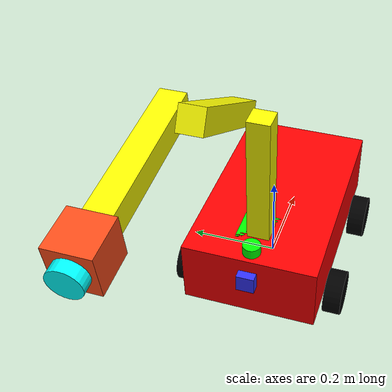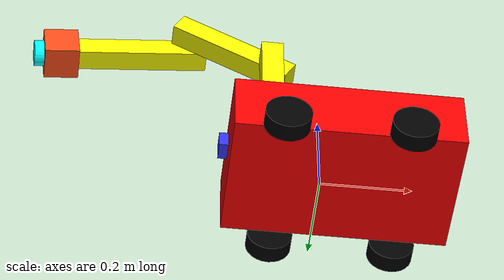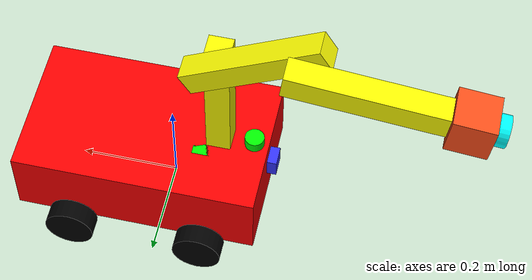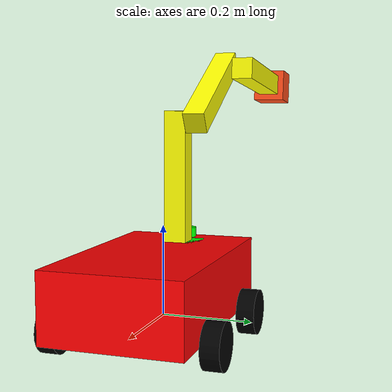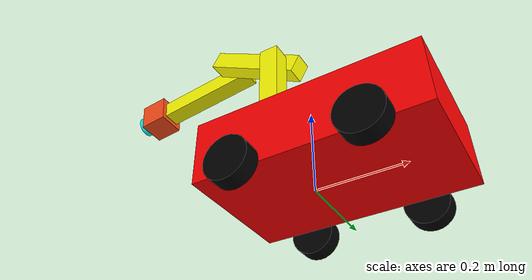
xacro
<?xml version="1.0"?>
<robot xmlns:xacro="http://www.ros.org/wiki/xacro"  name="robot">

    <xacro:include filename="robot_core.xacro" />
    <xacro:include filename="gazebo_control.xacro" />
    <xacro:include filename="camera.xacro"/>
    <xacro:include filename="lidar.xacro"/>
    <xacro:include filename="ultrasonic.xacro"/>

</robot>

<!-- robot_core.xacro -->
<robot xmlns:xacro="http://www.ros.org/wiki/xacro" >

    <xacro:include filename="inertial_macros.xacro"/>

    <material name="white">
        <color rgba="1 1 1 1" />
    </material>

    <material name="orange">
        <color rgba="1 0.3 0.1 1"/>
    </material>

    <material name="blue">
        <color rgba="0.2 0.2 1 1"/>
    </material>

    <material name="black">
        <color rgba="0 0 0 1"/>
    </material>

    <material name="red">
        <color rgba="1 0 0 1"/>
    </material>

    <material name="yellow">
        <color rgba="1 1 0 1"/>
    </material>

    <material name="green">
        <color rgba="0 1 0 1"/>
    </material>

    <material name="cyan">
        <color rgba="0 1 1 1"/>
    </material>

    <!-- BASE LINK -->

    <link name="base_link">

    </link>
    <joint name="base_footprint_joint" type="fixed">
        <parent link="base_link"/>
        <child link="base_footprint"/>
        <origin xyz="0 0 0" rpy="0 0 0"/>
    </joint>

    <link name="base_footprint">
    </link>

    <!-- CHASSIS LINK -->

    <joint name="chassis_joint" type="fixed">
        <parent link="base_link"/>
        <child link="chassis"/>
        <origin xyz="-0.1 0 0"/>
    </joint>

    <link name="chassis">
        <visual>
            <origin xyz="0.15 0 0.075"/>
            <geometry>
                <box size="0.5 0.3 0.15"/>
            </geometry>
            <material name="red"/>
        </visual>
        <collision>
            <origin xyz="0.15 0 0.075"/>
            <geometry>
                <box size="0.5 0.3 0.15"/>
            </geometry>
        </collision>
        <xacro:inertial_box mass="0.5" x="0.5" y="0.3" z="0.15">
            <origin xyz="0.15 0 0.075" rpy="0 0 0"/>
        </xacro:inertial_box>
    </link>

    <gazebo reference="chassis">
        <material> Gazebo/Orange</material>
    </gazebo>

    <!-- FRONT LEFT WHEEL LINK -->

    <joint name="front_left_steering_joint" type="continuous">
        <parent link="base_link"/>
        <child link="front_left_streeing"/>
        <!--limit effort="5" lower="-2.1" upper="2.1" velocity="6.28"/-->
        <origin xyz="-0.090 0.175 0" rpy="${pi/2} 0 0" />
        <axis xyz="0 0 1"/>
    </joint>

    <link name="front_left_streeing">
        <visual>
            <geometry>
                <cylinder radius="0.05" length="0.04"/>
            </geometry>
            <material name="black"/>
        </visual>
        <collision>
            <geometry>
                <cylinder radius="0.05" length="0.04"/>
            </geometry>
        </collision>
        <xacro:inertial_cylinder mass="0.1" length="0.01" radius="0.01">
            <origin xyz="0 0 0" rpy="0 0 0"/>
        </xacro:inertial_cylinder>
    </link>

    <gazebo reference="front_left_streeing">
        <material> Gazebo/Blue</material>
    </gazebo>

    <!-- FRONT RIGHT WHEEL LINK -->

     <joint name="front_right_steering_joint" type="continuous">
        <parent link="base_link"/>
        <child link="front_right_steering"/>
        <!--limit effort="5" lower="-2.1" upper="2.1" velocity="6.28"/-->
        <origin xyz="-0.090 -0.175 0" rpy="${pi/2} 0 0" />
        <axis xyz="0 0 -1"/>
    </joint>

    <link name="front_right_steering">
        <visual>
            <geometry>
                <cylinder radius="0.05" length="0.04"/>
            </geometry>
            <material name="black"/>
        </visual>
        <collision>
            <geometry>
                <cylinder radius="0.05" length="0.04"/>
            </geometry>
        </collision>
        <xacro:inertial_cylinder mass="0.1" length="0.01" radius="0.01">
            <origin xyz="0 0 0" rpy="0 0 0"/>
        </xacro:inertial_cylinder>
    </link>

    <gazebo reference="front_right_steering">
        <material> Gazebo/Blue</material>
    </gazebo>

    <!-- ADDITIONAL WHEEL LINKS -->

    <!-- REAR RIGHT WHEEL LINK -->

    <joint name="rear_right_wheel_joint" type="continuous">
        <parent link="base_link"/>
        <child link="rear_right_wheel"/>
        <origin xyz="0.180 -0.175 0" rpy="${pi/2} 0 0"/>
        <axis xyz="0 0 -1"/>
    </joint>

    <link name="rear_right_wheel">
        <visual>
            <geometry>
                <cylinder radius="0.05" length="0.04"/>
            </geometry>
            <material name="black"/>
        </visual>
        <collision>
            <geometry>
                <cylinder radius="0.05" length="0.04"/>
            </geometry>
        </collision>
        <xacro:inertial_cylinder mass="0.1" length="0.04" radius="0.05">
            <origin xyz="0 0 0" rpy="0 0 0"/>
        </xacro:inertial_cylinder>
    </link>

     <gazebo reference="rear_right_wheel">
        <material> Gazebo/Blue</material>
    </gazebo>

    <!-- REAR LEFT WHEEL LINK -->

    <joint name="rear_left_wheel_joint" type="continuous">
        <parent link="base_link"/>
        <child link="rear_left_wheel"/>
        <origin xyz="0.180 0.175 0" rpy="${pi/2} 0 0"/>
        <axis xyz="0 0 1"/>
    </joint>

    <link name="rear_left_wheel">
        <visual>
            <geometry>
                <cylinder radius="0.05" length="0.04"/>
            </geometry>
            <material name="black"/>
        </visual>
        <collision>
            <geometry>
                <cylinder radius="0.05" length="0.04"/>
            </geometry>
        </collision>
        <xacro:inertial_cylinder mass="0.1" length="0.04" radius="0.05">
            <origin xyz="0 0 0" rpy="0 0 0"/>
        </xacro:inertial_cylinder>
    </link>

     <gazebo reference="rear_left_wheel">
        <material> Gazebo/Blue</material>

    </gazebo>

    <!-- ARM -->
	<link name="arm_base">
   		<visual>
     			<geometry>
       				<box size="0.1 .1 .1"/>
     			</geometry>
			<origin rpy="0 0 0" xyz="0 0 0.1"/>
			<material name="green">
			</material>
   		</visual>
		<collision>
			<geometry>
       				<box size="0.1 .1 .1"/>
			</geometry>
		</collision>
       		<xacro:inertial_box mass="0.05" x="0.1" y="0.1" z="0.1">
         	<origin xyz="0 0 0.1" rpy="0 0 0"/>
        	</xacro:inertial_box>
 	</link>

	<joint name="base_to_arm_base" type="fixed">
		<parent link="chassis"/>
		<child link="arm_base"/>
		<axis xyz="0 0 1"/>
		<origin xyz="0 0 0"/>
		<limit effort ="1000.0" lower="-0.32" upper="0.32" velocity="0.5"/>

	</joint>

	<link name="arm_1">
   		<visual>
     			<geometry>
       				<box size="0.05 .05 0.3"/>
     			</geometry>
			<origin rpy="0 0 0" xyz="0 0 0.15"/>
			<material name="yellow">
			</material>
   		</visual>
		<collision>
			<geometry>
       				<box size="0.05 .05 0.3"/>
			</geometry>
		</collision>
        	<xacro:inertial_box mass="0.0005" x="0.05" y="0.05" z="0.3">
            	<origin xyz="0 0 0.15" rpy="0 0 0"/>
        	</xacro:inertial_box>
 	</link>

	<joint name="arm_1_to_arm_base" type="fixed">
		<parent link="arm_base"/>
		<child link="arm_1"/>
		<axis xyz="0 0 1"/>
		<origin xyz="0 0 0.15"/>
		<limit effort ="1000.0" lower="-0.40" upper="0.40" velocity="0.5"/>
	</joint>

	<link name="arm_2">
   		<visual>
     			<geometry>
       				<box size="0.05 0.05 0.3"/>
     			</geometry>
			<origin rpy="0 0 0" xyz="0.0 0.055 0.095"/>
			<material name="yellow">
			</material>
   		</visual>
		<collision>
			<geometry>
       				<box size="0.05 .05 0.3"/>
			</geometry>
		</collision>
        	<xacro:inertial_box mass="0.0005" x="0.05" y="0.05" z="0.3">
            	<origin xyz="0.0 0.055 0.095" rpy="0 0 0"/>
        	</xacro:inertial_box>
 	</link>

	<joint name="arm_2_to_arm_1" type="revolute">
		<parent link="arm_1"/>
		<child link="arm_2"/>
		<axis xyz="0 1 0"/>
		<origin xyz="0.0 0 0.3"/>
		<limit effort ="1000.0" lower="-1.06" upper="-1.05" velocity="0.5"/>
	</joint>

	<link name="arm_3">
   		<visual>
     			<geometry>
       				<box size="0.05 0.05 0.3"/>
     			</geometry>
			<origin rpy="0 0 0" xyz="0.0 0.09 0.12"/>
			<material name="yellow">
			</material>
   		</visual>
		<collision>
			<geometry>
       				<box size="0.05 .05 0.3"/>
			</geometry>
		</collision>
        	<xacro:inertial_box mass="0.0005" x="0.05" y="0.05" z="0.3">
            	<origin xyz="0.0 0.09 0.12" rpy="0 0 0"/>
        	</xacro:inertial_box>
 	</link>

	<joint name="arm_3_to_arm_2" type="revolute">
		<parent link="arm_2"/>
		<child link="arm_3"/>
		<axis xyz="0 1 0"/>
		<origin xyz="0 0.022 0.2"/>
		<limit effort ="1000.0" lower="-0.63" upper="-0.62" velocity="0.5"/>
	</joint>

</robot>

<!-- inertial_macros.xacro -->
<robot xmlns:xacro="http://www.ros.org/wiki/xacro" >

    <!-- Specify some standard inertial calculations https://en.wikipedia.org/wiki/List_of_moments_of_inertia -->
    <!-- These make use of xacro's mathematical functionality -->

    <xacro:macro name="inertial_sphere" params="mass radius *origin">
        <inertial>
            <xacro:insert_block name="origin"/>
            <mass value="${mass}" />
            <inertia ixx="${(2/5) * mass * (radius*radius)}" ixy="0.0" ixz="0.0"
                    iyy="${(2/5) * mass * (radius*radius)}" iyz="0.0"
                    izz="${(2/5) * mass * (radius*radius)}" />
        </inertial>
    </xacro:macro>

    <xacro:macro name="inertial_box" params="mass x y z *origin">
        <inertial>
            <xacro:insert_block name="origin"/>
            <mass value="${mass}" />
            <inertia ixx="${(1/12) * mass * (y*y+z*z)}" ixy="0.0" ixz="0.0"
                    iyy="${(1/12) * mass * (x*x+z*z)}" iyz="0.0"
                    izz="${(1/12) * mass * (x*x+y*y)}" />
        </inertial>
    </xacro:macro>

    <xacro:macro name="inertial_cylinder" params="mass length radius *origin">
        <inertial>
            <xacro:insert_block name="origin"/>
            <mass value="${mass}" />
            <inertia ixx="${(1/12) * mass * (3*radius*radius + length*length)}" ixy="0.0" ixz="0.0"
                    iyy="${(1/12) * mass * (3*radius*radius + length*length)}" iyz="0.0"
                    izz="${(1/2) * mass * (radius*radius)}" />
        </inertial>
    </xacro:macro>

   <xacro:macro name="default_inertial" params="mass">
               <inertial>
                       <mass value="${mass}" />
                       <inertia ixx="1.0" ixy="0.0" ixz="0.0"
                                iyy="1.0" iyz="0.0"
                                izz="1.0" />
               </inertial>
	</xacro:macro>
</robot>

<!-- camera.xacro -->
<robot xmlns:xacro="http://www.ros.org/wiki/xacro">

   <link name="camera_link">
    <visual>
      <geometry>
        <box size="0.08 0.08 0.08"/>
      </geometry>
      <material name="orange"/>
    </visual>
    <collision>
      <geometry>
        <box size="0.1 0.1 0.1"/>
      </geometry>
    </collision>
    <xacro:inertial_box mass="0.00005" x="0.08" y="0.08" z="0.08">
    <origin xyz="0.0 0.09 0.31" rpy="0 0 0"/>
    </xacro:inertial_box>
  </link>

 <joint name="camera_joint" type="fixed">
    <parent link="arm_3"/>
    <child link="camera_link"/>
    <axis xyz="1 0 0"/>
    <origin xyz="0.0 0.09 0.31"/>
    <limit effort="1000.0" lower="-0.38" upper="0.38" velocity="0.5"/> <!-- Modify the limits here -->
 </joint>

  <link name="camera_lens">
    <visual>
      <geometry>
        <cylinder radius="0.03" length="0.025"/>
      </geometry>
      <material name="cyan"/>
    </visual>
    <collision>
      <geometry>
        <cylinder radius="0.01" length="0.02"/>
      </geometry>
    </collision>
    <xacro:inertial_cylinder mass="0.000001" length="0.02" radius="0.01">
    <origin xyz="0.0 0 0.05" rpy="0 0 0"/>
    </xacro:inertial_cylinder>
  </link>

  <joint name="cameralens_joint" type="fixed">
    <parent link="camera_link"/>
    <child link="camera_lens"/>
    <axis xyz="0 1 0"/>
    <origin xyz="0.0 0 0.05"/>
    <limit effort="1000.0" lower="-2.5" upper="2.5" velocity="0.5"/>
  </joint>

    <!-- camera -->
  <gazebo reference="camera_lens">
    <sensor type="depth" name="camera1">
      <update_rate>30.0</update_rate>
      <camera name="head">
        <horizontal_fov>1.3962634</horizontal_fov>
        <image>
          <width>800</width>
          <height>800</height>
          <format>R8G8B8</format>
        </image>
        <clip>
          <near>0.02</near>
          <far>300</far>
        </clip>
        <noise>
          <type>gaussian</type>
          <mean>0.0</mean>
          <stddev>0.007</stddev>
        </noise>
      </camera>
      <plugin name="camera_controller" filename="libgazebo_ros_camera.so">
        <alwaysOn>true</alwaysOn>
        <updateRate>0.0</updateRate>
        <cameraName>rrbot/camera1</cameraName>
        <imageTopicName>image_raw</imageTopicName>
        <cameraInfoTopicName>camera_info</cameraInfoTopicName>
        <frameName>camera_link</frameName>
        <hackBaseline>0.07</hackBaseline>
        <distortionK1>0.0</distortionK1>
        <distortionK2>0.0</distortionK2>
        <distortionK3>0.0</distortionK3>
        <distortionT1>0.0</distortionT1>
        <distortionT2>0.0</distortionT2>
      </plugin>
    </sensor>
  </gazebo>
</robot>

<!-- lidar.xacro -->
<robot xmlns:xacro="http://www.ros.org/wiki/xacro">

<link name="lidar">
    <visual>
      <geometry>
        <cylinder radius="0.02" length="0.025"/>
      </geometry>
      <material name="green"/>
    </visual>
    <collision>
      <geometry>
        <cylinder radius="0.01" length="0.02"/>
      </geometry>
    </collision>
    <xacro:inertial_cylinder mass="0.000001" length="0.02" radius="0.01">
    <origin xyz="-0.07 0 0.16" rpy="0 0 0"/>
    </xacro:inertial_cylinder>
  </link>

  <joint name="lidar_joint" type="fixed">
    <parent link="chassis"/>
    <child link="lidar"/>
    <axis xyz="0 1 0"/>
    <origin xyz="-0.07 0 0.16"/>
    <limit effort="1000.0" lower="-2.5" upper="2.5" velocity="0.5"/>
  </joint>

  <gazebo reference="lidar">
        <material>Gazebo/Red</material>

        <sensor name="laser" type="ray">
            <pose> 0 0 0 0 0 0 </pose>
            <visualize>false</visualize>
            <update_rate>10</update_rate>
            <ray>
                <scan>
                    <horizontal>
                        <samples>360</samples>
                        <min_angle>-3.14</min_angle>
                        <max_angle>3.14</max_angle>
                    </horizontal>
                </scan>
                <range>
                    <min>0.3</min>
                    <max>12</max>
                </range>
            </ray>
            <plugin name="laser_controller" filename="libgazebo_ros_ray_sensor.so">
                <ros>
                    <argument>~/out:=scan</argument>
                </ros>
                <output_type>sensor_msgs/LaserScan</output_type>
                <frame_name>laser_frame</frame_name>
            </plugin>
        </sensor>
    </gazebo>

</robot>

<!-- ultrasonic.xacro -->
<robot xmlns:xacro="http://www.ros.org/wiki/xacro">

   <link name="sonic_sensor">
    <visual>
      <geometry>
        <box size="0.02 0.04 0.04"/>
      </geometry>
      <material name="blue"/>
    </visual>
    <collision>
      <geometry>
        <box size="0.02 0.04 0.04"/>
      </geometry>
    </collision>
    <xacro:inertial_box mass="0.00005" x="0.08" y="0.08" z="0.08">
    <origin xyz="-0.11 0 0.1" rpy="0 0 0"/>
    </xacro:inertial_box>
  </link>

 <joint name="sonic_joint" type="fixed">
    <parent link="chassis"/>
    <child link="sonic_sensor"/>
    <axis xyz="1 0 0"/>
    <origin xyz="-0.11 0 0.1"/>
    <limit effort="1000.0" lower="-0.38" upper="0.38" velocity="0.5"/> <!-- Modify the limits here -->
 </joint>

  <gazebo reference="sonic_sensor">
        <material>Gazebo/blue</material>
    <pose>0.09 -0.139 0.595 0 0 0</pose>
    <sensor name="ultrasonic_1" type="ray">
      <always_on>true</always_on>
      <visualize>true</visualize>
      <update_rate>5</update_rate>
      <ray>
       <scan>
          <horizontal>
            <samples>5</samples>
            <resolution>1.000000</resolution>
           <min_angle>-0.12</min_angle>
           <max_angle>0.12</max_angle>
         </horizontal>
          <vertical>
            <samples>5</samples>
           <resolution>1.000000</resolution>
           <min_angle>-0.01</min_angle>
            <max_angle>0.01</max_angle>
         </vertical>
       </scan>
       <range>
         <min>0.02</min>
          <max>4</max>
          <resolution>0.01</resolution>
        </range>
       <noise>
          <type>gaussian</type>
          <mean>0.0</mean>
         <stddev>0.01</stddev>
       </noise>
     </ray>
     <plugin name="ultrasonic_sensor_1" filename="libgazebo_ros_ray_sensor.so">
        <ros>
         <remapping>~/out:=ultrasonic_sensor_1</remapping>
        </ros>
        <output_type>sensor_msgs/Range</output_type>
        <radiation_type>ultrasound</radiation_type>
       <frame_name>sonic_sensor</frame_name>
     </plugin>
   </sensor>

</gazebo>

</robot>
